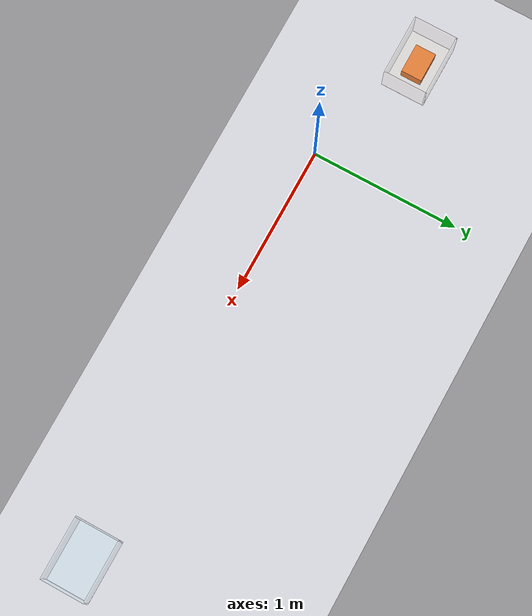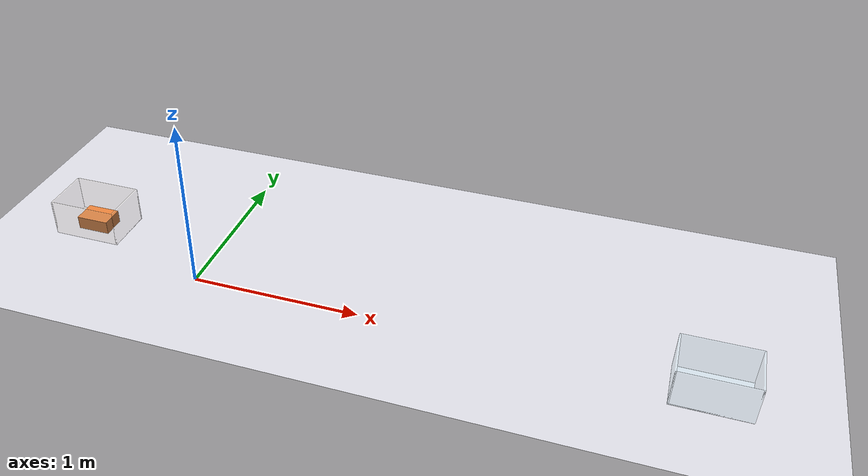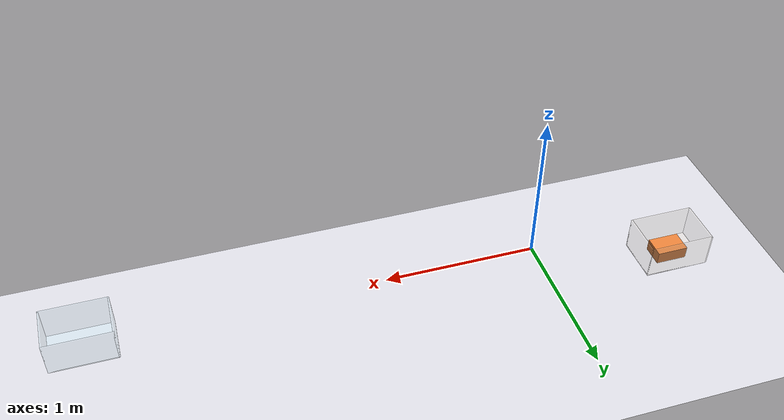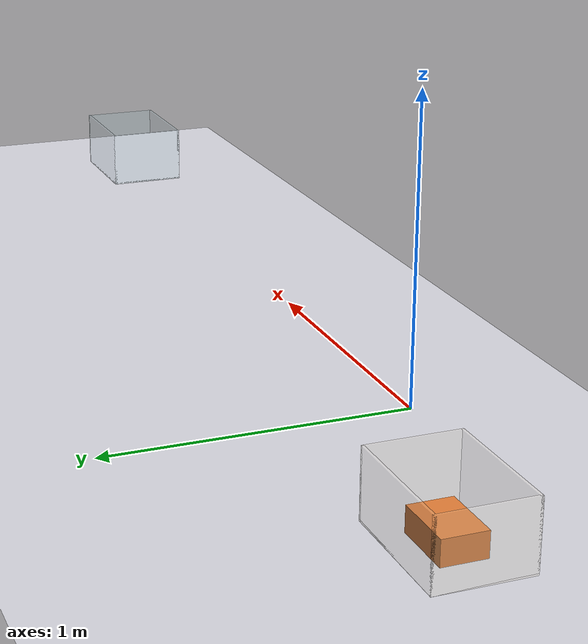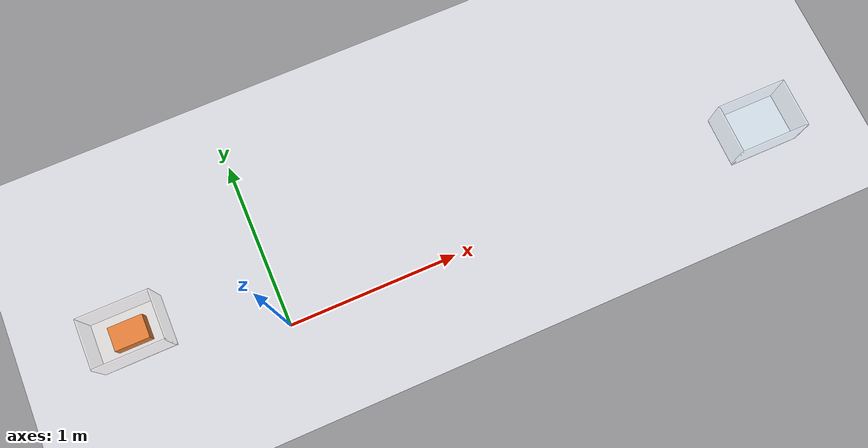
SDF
<sdf version="1.7">
 <world name="arm_world">
  <physics name="1ms" type="ignored">
   <max_step_size>0.001</max_step_size>
   <real_time_factor>1.0</real_time_factor>
  </physics>
  <plugin filename="ignition-gazebo-physics-system" name="ignition::gazebo::systems::Physics"/>
  <plugin filename="ignition-gazebo-scene-broadcaster-system" name="ignition::gazebo::systems::SceneBroadcaster"/>
  <plugin filename="ignition-gazebo-user-commands-system" name="ignition::gazebo::systems::UserCommands"/>
  <plugin filename="ignition-gazebo-sensors-system" name="ignition::gazebo::systems::Sensors"/>
  <light type="directional" name="sun">
   <pose>0 0 10 0 0 0</pose>
   <diffuse>0.8 0.8 0.8 1</diffuse>
   <specular>0.2 0.2 0.2 1</specular>
   <direction>-0.5 0.1 -0.9</direction>
  </light>
  <model name="ground_plane">
   <static>true</static>
   <link name="ground_link">
    <collision name="collision">
     <geometry><plane><normal>0 0 1</normal><size>100 100</size></plane></geometry>
    </collision>
    <visual name="visual">
     <geometry><plane><normal>0 0 1</normal><size>100 100</size></plane></geometry>
     <material><ambient>0.75 0.75 0.78 1</ambient><diffuse>0.85 0.85 0.88 1</diffuse></material>
    </visual>
   </link>
  </model>
  <model name="rect_pickup">
   <pose>-0.82 0.30 0.046 0 0 0</pose>
   <link name="box_link">
    <inertial>
     <mass>0.25</mass>
     <inertia>
      <ixx>0.000542</ixx>
      <ixy>0</ixy>
      <ixz>0</ixz>
      <iyy>0.000967</iyy>
      <iyz>0</iyz>
      <izz>0.001242</izz>
     </inertia>
    </inertial>
    <collision name="box_collision">
     <geometry><box><size>0.20 0.14 0.08</size></box></geometry>
     <surface>
      <friction><ode><mu>5.0</mu><mu2>5.0</mu2></ode></friction>
      <contact><ode><kp>100000</kp><kd>1000</kd><max_vel>0.01</max_vel><min_depth>0.001</min_depth></ode></contact>
     </surface>
    </collision>
    <visual name="box_visual">
     <geometry><box><size>0.20 0.14 0.08</size></box></geometry>
     <material><ambient>0.85 0.45 0.2 1</ambient><diffuse>0.9 0.5 0.22 1</diffuse></material>
    </visual>
   </link>
   <plugin filename="ignition-gazebo-pose-publisher-system" name="ignition::gazebo::systems::PosePublisher">
    <publish_model_pose>true</publish_model_pose>
    <publish_link_pose>false</publish_link_pose>
    <publish_collision_pose>false</publish_collision_pose>
    <publish_visual_pose>false</publish_visual_pose>
    <publish_nested_model_pose>false</publish_nested_model_pose>
    <use_pose_vector_msg>false</use_pose_vector_msg>
   </plugin>
  </model>
  <model name="carton_box">
   <pose>-0.82 0.30 0 0 0 0</pose>
   <static>true</static>
   <link name="base">
    <visual name="floor">
     <pose>0 0 0.003 0 0 0</pose>
     <geometry><box><size>0.42 0.30 0.006</size></box></geometry>
     <material><ambient>0.92 0.88 0.75 0.22</ambient><diffuse>0.95 0.9 0.8 0.25</diffuse></material>
    </visual>
    <collision name="floor_c">
     <pose>0 0 0.003 0 0 0</pose>
     <geometry><box><size>0.42 0.30 0.006</size></box></geometry>
    </collision>
    <visual name="wall_px">
     <pose>0.206 0 0.110 0 0 0</pose>
     <geometry><box><size>0.008 0.30 0.22</size></box></geometry>
     <material><ambient>0.92 0.88 0.75 0.18</ambient><diffuse>0.95 0.9 0.8 0.2</diffuse></material>
    </visual>
    <collision name="wall_px_c">
     <pose>0.206 0 0.110 0 0 0</pose>
     <geometry><box><size>0.008 0.30 0.22</size></box></geometry>
    </collision>
    <visual name="wall_nx">
     <pose>-0.206 0 0.110 0 0 0</pose>
     <geometry><box><size>0.008 0.30 0.22</size></box></geometry>
     <material><ambient>0.92 0.88 0.75 0.18</ambient><diffuse>0.95 0.9 0.8 0.2</diffuse></material>
    </visual>
    <collision name="wall_nx_c">
     <pose>-0.206 0 0.110 0 0 0</pose>
     <geometry><box><size>0.008 0.30 0.22</size></box></geometry>
    </collision>
    <visual name="wall_py">
     <pose>0 0.146 0.110 0 0 0</pose>
     <geometry><box><size>0.42 0.008 0.22</size></box></geometry>
     <material><ambient>0.92 0.88 0.75 0.18</ambient><diffuse>0.95 0.9 0.8 0.2</diffuse></material>
    </visual>
    <collision name="wall_py_c">
     <pose>0 0.146 0.110 0 0 0</pose>
     <geometry><box><size>0.42 0.008 0.22</size></box></geometry>
    </collision>
    <visual name="wall_ny">
     <pose>0 -0.146 0.110 0 0 0</pose>
     <geometry><box><size>0.42 0.008 0.22</size></box></geometry>
     <material><ambient>0.92 0.88 0.75 0.18</ambient><diffuse>0.95 0.9 0.8 0.2</diffuse></material>
    </visual>
    <collision name="wall_ny_c">
     <pose>0 -0.146 0.110 0 0 0</pose>
     <geometry><box><size>0.42 0.008 0.22</size></box></geometry>
    </collision>
   </link>
   <plugin filename="ignition-gazebo-pose-publisher-system" name="ignition::gazebo::systems::PosePublisher">
    <publish_model_pose>true</publish_model_pose>
    <publish_link_pose>true</publish_link_pose>
    <publish_collision_pose>false</publish_collision_pose>
    <publish_visual_pose>false</publish_visual_pose>
    <publish_nested_model_pose>false</publish_nested_model_pose>
    <use_pose_vector_msg>false</use_pose_vector_msg>
    <static_publisher>true</static_publisher>
    <static_update_frequency>2</static_update_frequency>
   </plugin>
  </model>
  <model name="box2">
   <pose>2.90000 0.00000 0 0 0 0</pose>
   <static>true</static>
   <link name="base">
    <visual name="floor">
     <pose>0 0 0.003 0 0 0</pose>
     <geometry><box><size>0.42 0.30 0.006</size></box></geometry>
     <material><ambient>0.75 0.90 0.95 0.22</ambient><diffuse>0.75 0.95 1.00 0.25</diffuse></material>
    </visual>
    <collision name="floor_c">
     <pose>0 0 0.003 0 0 0</pose>
     <geometry><box><size>0.42 0.30 0.006</size></box></geometry>
    </collision>
    <visual name="wall_px">
     <pose>0.206 0 0.110 0 0 0</pose>
     <geometry><box><size>0.008 0.30 0.22</size></box></geometry>
     <material><ambient>0.75 0.90 0.95 0.18</ambient><diffuse>0.75 0.95 1.00 0.2</diffuse></material>
    </visual>
    <collision name="wall_px_c">
     <pose>0.206 0 0.110 0 0 0</pose>
     <geometry><box><size>0.008 0.30 0.22</size></box></geometry>
    </collision>
    <visual name="wall_nx">
     <pose>-0.206 0 0.110 0 0 0</pose>
     <geometry><box><size>0.008 0.30 0.22</size></box></geometry>
     <material><ambient>0.75 0.90 0.95 0.18</ambient><diffuse>0.75 0.95 1.00 0.2</diffuse></material>
    </visual>
    <collision name="wall_nx_c">
     <pose>-0.206 0 0.110 0 0 0</pose>
     <geometry><box><size>0.008 0.30 0.22</size></box></geometry>
    </collision>
    <visual name="wall_py">
     <pose>0 0.146 0.110 0 0 0</pose>
     <geometry><box><size>0.42 0.008 0.22</size></box></geometry>
     <material><ambient>0.75 0.90 0.95 0.18</ambient><diffuse>0.75 0.95 1.00 0.2</diffuse></material>
    </visual>
    <collision name="wall_py_c">
     <pose>0 0.146 0.110 0 0 0</pose>
     <geometry><box><size>0.42 0.008 0.22</size></box></geometry>
    </collision>
    <visual name="wall_ny">
     <pose>0 -0.146 0.110 0 0 0</pose>
     <geometry><box><size>0.42 0.008 0.22</size></box></geometry>
     <material><ambient>0.75 0.90 0.95 0.18</ambient><diffuse>0.75 0.95 1.00 0.2</diffuse></material>
    </visual>
    <collision name="wall_ny_c">
     <pose>0 -0.146 0.110 0 0 0</pose>
     <geometry><box><size>0.42 0.008 0.22</size></box></geometry>
    </collision>
   </link>
   <plugin filename="ignition-gazebo-pose-publisher-system" name="ignition::gazebo::systems::PosePublisher">
    <publish_model_pose>true</publish_model_pose>
    <publish_link_pose>true</publish_link_pose>
    <publish_collision_pose>false</publish_collision_pose>
    <publish_visual_pose>false</publish_visual_pose>
    <publish_nested_model_pose>false</publish_nested_model_pose>
    <use_pose_vector_msg>false</use_pose_vector_msg>
    <static_publisher>true</static_publisher>
    <static_update_frequency>2</static_update_frequency>
   </plugin>
  </model>
 </world>
</sdf>
